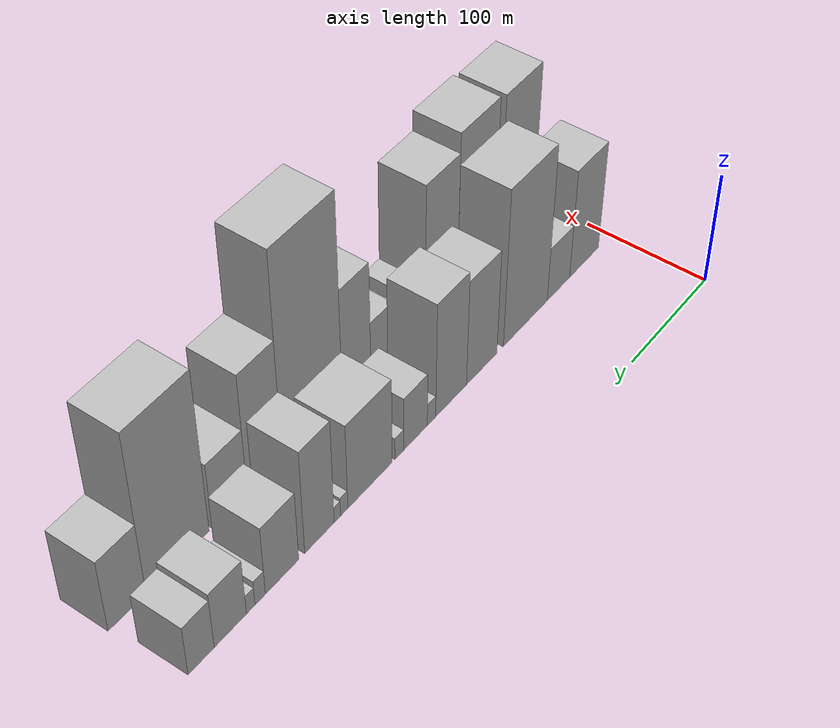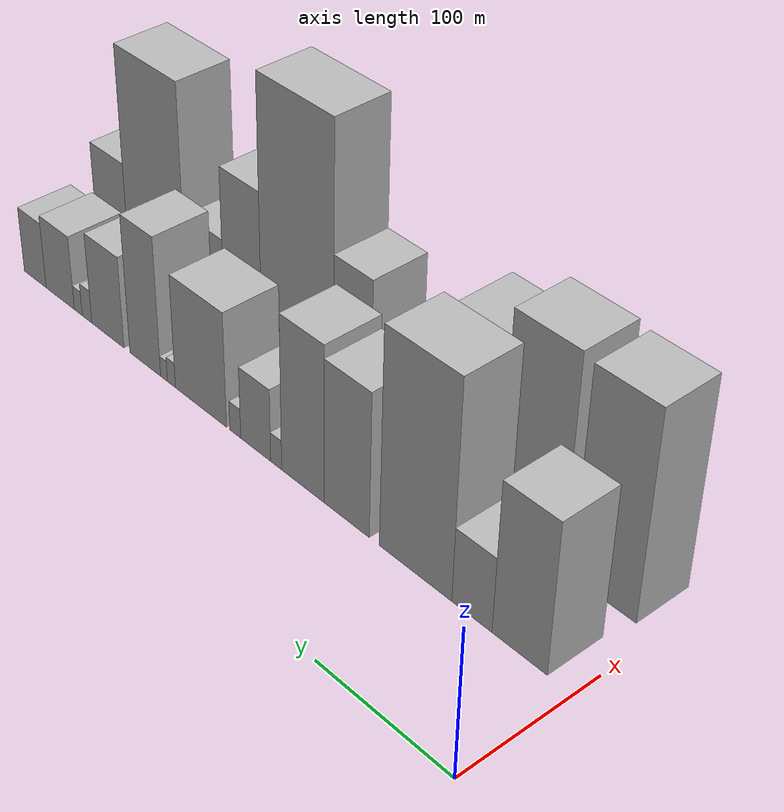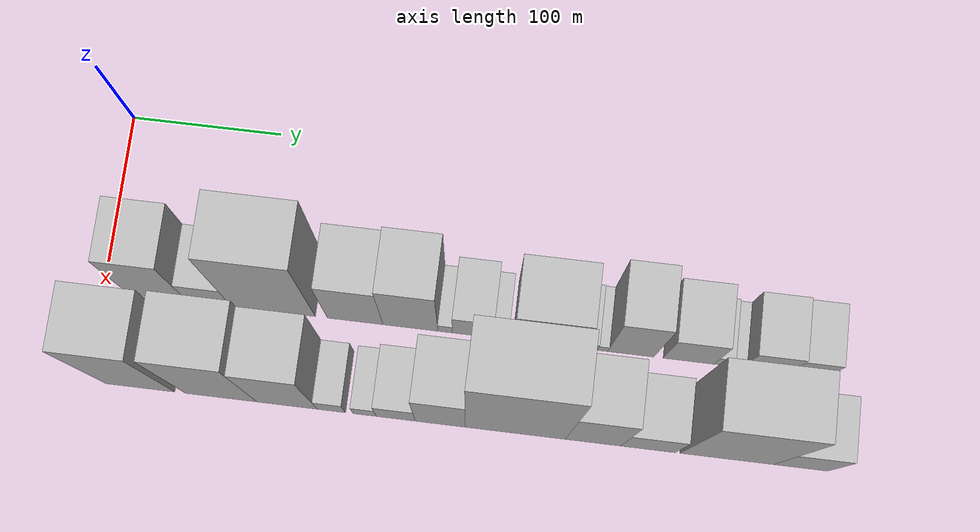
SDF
<sdf version="1.6">
 <world name="default">
  <model name="building_16">
   <static>1</static>
   <pose>100.0000 36.6464 0 0.000000 0.000000 0.000000</pose>
   <link name="link">
    <pose>0 0 51.00 0 0 0</pose>
    <collision name="collision"><geometry><box><size>40.0000 38.8180 102.0000</size></box></geometry></collision>
    <visual name="visual">
     <cast_shadows>0</cast_shadows>
     <geometry><box><size>40.0000 38.8180 102.0000</size></box></geometry>
     <material>
      <script>
       <uri>model://HANNAS_wall/materials/scripts</uri>
       <uri>model://HANNAS_wall/materials/textures</uri>
       <name>vrc/HANNAS_wall</name>
      </script>
     </material>
    </visual>
   </link>
  </model>
  <model name="building_17">
   <static>1</static>
   <pose>100.0000 70.6709 0 0.000000 0.000000 0.000000</pose>
   <link name="link">
    <pose>0 0 25.50 0 0 0</pose>
    <collision name="collision"><geometry><box><size>40.0000 29.2312 51.0000</size></box></geometry></collision>
    <visual name="visual">
     <cast_shadows>0</cast_shadows>
     <geometry><box><size>40.0000 29.2312 51.0000</size></box></geometry>
     <material>
      <script>
       <uri>model://HANNAS_wall/materials/scripts</uri>
       <uri>model://HANNAS_wall/materials/textures</uri>
       <name>vrc/HANNAS_wall</name>
      </script>
     </material>
    </visual>
   </link>
  </model>
  <model name="building_18">
   <static>1</static>
   <pose>100.0000 113.0090 0 0.000000 0.000000 0.000000</pose>
   <link name="link">
    <pose>0 0 73.50 0 0 0</pose>
    <collision name="collision"><geometry><box><size>40.0000 55.4450 147.0000</size></box></geometry></collision>
    <visual name="visual">
     <cast_shadows>0</cast_shadows>
     <geometry><box><size>40.0000 55.4450 147.0000</size></box></geometry>
     <material>
      <script>
       <uri>model://HANNAS_wall/materials/scripts</uri>
       <uri>model://HANNAS_wall/materials/textures</uri>
       <name>vrc/HANNAS_wall</name>
      </script>
     </material>
    </visual>
   </link>
  </model>
  <model name="building_19">
   <static>1</static>
   <pose>100.0000 167.0917 0 0.000000 0.000000 0.000000</pose>
   <link name="link">
    <pose>0 0 49.50 0 0 0</pose>
    <collision name="collision"><geometry><box><size>40.0000 36.7203 99.0000</size></box></geometry></collision>
    <visual name="visual">
     <cast_shadows>0</cast_shadows>
     <geometry><box><size>40.0000 36.7203 99.0000</size></box></geometry>
     <material>
      <script>
       <uri>model://HANNAS_wall/materials/scripts</uri>
       <uri>model://HANNAS_wall/materials/textures</uri>
       <name>vrc/HANNAS_wall</name>
      </script>
     </material>
    </visual>
   </link>
  </model>
  <model name="building_20">
   <static>1</static>
   <pose>100.0000 203.5088 0 0.000000 0.000000 0.000000</pose>
   <link name="link">
    <pose>0 0 54.00 0 0 0</pose>
    <collision name="collision"><geometry><box><size>40.0000 36.1139 108.0000</size></box></geometry></collision>
    <visual name="visual">
     <cast_shadows>0</cast_shadows>
     <geometry><box><size>40.0000 36.1139 108.0000</size></box></geometry>
     <material>
      <script>
       <uri>model://HANNAS_wall/materials/scripts</uri>
       <uri>model://HANNAS_wall/materials/textures</uri>
       <name>vrc/HANNAS_wall</name>
      </script>
     </material>
    </visual>
   </link>
  </model>
  <model name="building_21">
   <static>1</static>
   <pose>100.0000 226.3433 0 0.000000 0.000000 0.000000</pose>
   <link name="link">
    <pose>0 0 10.50 0 0 0</pose>
    <collision name="collision"><geometry><box><size>40.0000 9.5550 21.0000</size></box></geometry></collision>
    <visual name="visual">
     <cast_shadows>0</cast_shadows>
     <geometry><box><size>40.0000 9.5550 21.0000</size></box></geometry>
     <material>
      <script>
       <uri>model://HANNAS_wall/materials/scripts</uri>
       <uri>model://HANNAS_wall/materials/textures</uri>
       <name>vrc/HANNAS_wall</name>
      </script>
     </material>
    </visual>
   </link>
  </model>
  <model name="building_22">
   <static>1</static>
   <pose>100.0000 244.4380 0 0.000000 0.000000 0.000000</pose>
   <link name="link">
    <pose>0 0 25.50 0 0 0</pose>
    <collision name="collision"><geometry><box><size>40.0000 26.6344 51.0000</size></box></geometry></collision>
    <visual name="visual">
     <cast_shadows>0</cast_shadows>
     <geometry><box><size>40.0000 26.6344 51.0000</size></box></geometry>
     <material>
      <script>
       <uri>model://HANNAS_wall/materials/scripts</uri>
       <uri>model://HANNAS_wall/materials/textures</uri>
       <name>vrc/HANNAS_wall</name>
      </script>
     </material>
    </visual>
   </link>
  </model>
  <model name="building_23">
   <static>1</static>
   <pose>100.0000 262.6587 0 0.000000 0.000000 0.000000</pose>
   <link name="link">
    <pose>0 0 10.50 0 0 0</pose>
    <collision name="collision"><geometry><box><size>40.0000 9.8070 21.0000</size></box></geometry></collision>
    <visual name="visual">
     <cast_shadows>0</cast_shadows>
     <geometry><box><size>40.0000 9.8070 21.0000</size></box></geometry>
     <material>
      <script>
       <uri>model://HANNAS_wall/materials/scripts</uri>
       <uri>model://HANNAS_wall/materials/textures</uri>
       <name>vrc/HANNAS_wall</name>
      </script>
     </material>
    </visual>
   </link>
  </model>
  <model name="building_24">
   <static>1</static>
   <pose>100.0000 294.5221 0 0.000000 0.000000 0.000000</pose>
   <link name="link">
    <pose>0 0 40.50 0 0 0</pose>
    <collision name="collision"><geometry><box><size>40.0000 47.9198 81.0000</size></box></geometry></collision>
    <visual name="visual">
     <cast_shadows>0</cast_shadows>
     <geometry><box><size>40.0000 47.9198 81.0000</size></box></geometry>
     <material>
      <script>
       <uri>model://HANNAS_wall/materials/scripts</uri>
       <uri>model://HANNAS_wall/materials/textures</uri>
       <name>vrc/HANNAS_wall</name>
      </script>
     </material>
    </visual>
   </link>
  </model>
  <model name="building_25">
   <static>1</static>
   <pose>100.0000 322.3379 0 0.000000 0.000000 0.000000</pose>
   <link name="link">
    <pose>0 0 9.00 0 0 0</pose>
    <collision name="collision"><geometry><box><size>40.0000 7.7118 18.0000</size></box></geometry></collision>
    <visual name="visual">
     <cast_shadows>0</cast_shadows>
     <geometry><box><size>40.0000 7.7118 18.0000</size></box></geometry>
     <material>
      <script>
       <uri>model://HANNAS_wall/materials/scripts</uri>
       <uri>model://HANNAS_wall/materials/textures</uri>
       <name>vrc/HANNAS_wall</name>
      </script>
     </material>
    </visual>
   </link>
  </model>
  <model name="building_26">
   <static>1</static>
   <pose>100.0000 329.4897 0 0.000000 0.000000 0.000000</pose>
   <link name="link">
    <pose>0 0 7.50 0 0 0</pose>
    <collision name="collision"><geometry><box><size>40.0000 6.5919 15.0000</size></box></geometry></collision>
    <visual name="visual">
     <cast_shadows>0</cast_shadows>
     <geometry><box><size>40.0000 6.5919 15.0000</size></box></geometry>
     <material>
      <script>
       <uri>model://HANNAS_wall/materials/scripts</uri>
       <uri>model://HANNAS_wall/materials/textures</uri>
       <name>vrc/HANNAS_wall</name>
      </script>
     </material>
    </visual>
   </link>
  </model>
  <model name="building_27">
   <static>1</static>
   <pose>100.0000 347.9897 0 0.000000 0.000000 0.000000</pose>
   <link name="link">
    <pose>0 0 49.50 0 0 0</pose>
    <collision name="collision"><geometry><box><size>40.0000 30.4081 99.0000</size></box></geometry></collision>
    <visual name="visual">
     <cast_shadows>0</cast_shadows>
     <geometry><box><size>40.0000 30.4081 99.0000</size></box></geometry>
     <material>
      <script>
       <uri>model://HANNAS_wall/materials/scripts</uri>
       <uri>model://HANNAS_wall/materials/textures</uri>
       <name>vrc/HANNAS_wall</name>
      </script>
     </material>
    </visual>
   </link>
  </model>
  <model name="building_28">
   <static>1</static>
   <pose>100.0000 385.7525 0 0.000000 0.000000 0.000000</pose>
   <link name="link">
    <pose>0 0 33.00 0 0 0</pose>
    <collision name="collision"><geometry><box><size>40.0000 33.1177 66.0000</size></box></geometry></collision>
    <visual name="visual">
     <cast_shadows>0</cast_shadows>
     <geometry><box><size>40.0000 33.1177 66.0000</size></box></geometry>
     <material>
      <script>
       <uri>model://HANNAS_wall/materials/scripts</uri>
       <uri>model://HANNAS_wall/materials/textures</uri>
       <name>vrc/HANNAS_wall</name>
      </script>
     </material>
    </visual>
   </link>
  </model>
  <model name="building_29">
   <static>1</static>
   <pose>100.0000 407.3562 0 0.000000 0.000000 0.000000</pose>
   <link name="link">
    <pose>0 0 12.00 0 0 0</pose>
    <collision name="collision"><geometry><box><size>40.0000 10.0896 24.0000</size></box></geometry></collision>
    <visual name="visual">
     <cast_shadows>0</cast_shadows>
     <geometry><box><size>40.0000 10.0896 24.0000</size></box></geometry>
     <material>
      <script>
       <uri>model://HANNAS_wall/materials/scripts</uri>
       <uri>model://HANNAS_wall/materials/textures</uri>
       <name>vrc/HANNAS_wall</name>
      </script>
     </material>
    </visual>
   </link>
  </model>
  <model name="building_30">
   <static>1</static>
   <pose>100.0000 416.5464 0 0.000000 0.000000 0.000000</pose>
   <link name="link">
    <pose>0 0 9.00 0 0 0</pose>
    <collision name="collision"><geometry><box><size>40.0000 8.2909 18.0000</size></box></geometry></collision>
    <visual name="visual">
     <cast_shadows>0</cast_shadows>
     <geometry><box><size>40.0000 8.2909 18.0000</size></box></geometry>
     <material>
      <script>
       <uri>model://HANNAS_wall/materials/scripts</uri>
       <uri>model://HANNAS_wall/materials/textures</uri>
       <name>vrc/HANNAS_wall</name>
      </script>
     </material>
    </visual>
   </link>
  </model>
  <model name="building_31">
   <static>1</static>
   <pose>100.0000 435.9481 0 0.000000 0.000000 0.000000</pose>
   <link name="link">
    <pose>0 0 27.00 0 0 0</pose>
    <collision name="collision"><geometry><box><size>40.0000 30.5125 54.0000</size></box></geometry></collision>
    <visual name="visual">
     <cast_shadows>0</cast_shadows>
     <geometry><box><size>40.0000 30.5125 54.0000</size></box></geometry>
     <material>
      <script>
       <uri>model://HANNAS_wall/materials/scripts</uri>
       <uri>model://HANNAS_wall/materials/textures</uri>
       <name>vrc/HANNAS_wall</name>
      </script>
     </material>
    </visual>
   </link>
  </model>
  <model name="building_32">
   <static>1</static>
   <pose>100.0000 463.2754 0 0.000000 0.000000 0.000000</pose>
   <link name="link">
    <pose>0 0 24.00 0 0 0</pose>
    <collision name="collision"><geometry><box><size>40.0000 24.1422 48.0000</size></box></geometry></collision>
    <visual name="visual">
     <cast_shadows>0</cast_shadows>
     <geometry><box><size>40.0000 24.1422 48.0000</size></box></geometry>
     <material>
      <script>
       <uri>model://HANNAS_wall/materials/scripts</uri>
       <uri>model://HANNAS_wall/materials/textures</uri>
       <name>vrc/HANNAS_wall</name>
      </script>
     </material>
    </visual>
   </link>
  </model>
  <model name="building_44">
   <static>1</static>
   <pose>160.0000 35.0524 0 0.000000 0.000000 0.000000</pose>
   <link name="link">
    <pose>0 0 70.50 0 0 0</pose>
    <collision name="collision"><geometry><box><size>40.0000 44.7973 141.0000</size></box></geometry></collision>
    <visual name="visual">
     <cast_shadows>0</cast_shadows>
     <geometry><box><size>40.0000 44.7973 141.0000</size></box></geometry>
     <material>
      <script>
       <uri>model://HANNAS_wall/materials/scripts</uri>
       <uri>model://HANNAS_wall/materials/textures</uri>
       <name>vrc/HANNAS_wall</name>
      </script>
     </material>
    </visual>
   </link>
  </model>
  <model name="building_45">
   <static>1</static>
   <pose>160.0000 87.8977 0 0.000000 0.000000 0.000000</pose>
   <link name="link">
    <pose>0 0 72.00 0 0 0</pose>
    <collision name="collision"><geometry><box><size>40.0000 46.8934 144.0000</size></box></geometry></collision>
    <visual name="visual">
     <cast_shadows>0</cast_shadows>
     <geometry><box><size>40.0000 46.8934 144.0000</size></box></geometry>
     <material>
      <script>
       <uri>model://HANNAS_wall/materials/scripts</uri>
       <uri>model://HANNAS_wall/materials/textures</uri>
       <name>vrc/HANNAS_wall</name>
      </script>
     </material>
    </visual>
   </link>
  </model>
  <model name="building_46">
   <static>1</static>
   <pose>160.0000 131.0804 0 0.000000 0.000000 0.000000</pose>
   <link name="link">
    <pose>0 0 63.00 0 0 0</pose>
    <collision name="collision"><geometry><box><size>40.0000 39.4721 126.0000</size></box></geometry></collision>
    <visual name="visual">
     <cast_shadows>0</cast_shadows>
     <geometry><box><size>40.0000 39.4721 126.0000</size></box></geometry>
     <material>
      <script>
       <uri>model://HANNAS_wall/materials/scripts</uri>
       <uri>model://HANNAS_wall/materials/textures</uri>
       <name>vrc/HANNAS_wall</name>
      </script>
     </material>
    </visual>
   </link>
  </model>
  <model name="building_47">
   <static>1</static>
   <pose>160.0000 159.9213 0 0.000000 0.000000 0.000000</pose>
   <link name="link">
    <pose>0 0 18.00 0 0 0</pose>
    <collision name="collision"><geometry><box><size>40.0000 18.2095 36.0000</size></box></geometry></collision>
    <visual name="visual">
     <cast_shadows>0</cast_shadows>
     <geometry><box><size>40.0000 18.2095 36.0000</size></box></geometry>
     <material>
      <script>
       <uri>model://HANNAS_wall/materials/scripts</uri>
       <uri>model://HANNAS_wall/materials/textures</uri>
       <name>vrc/HANNAS_wall</name>
      </script>
     </material>
    </visual>
   </link>
  </model>
  <model name="building_48">
   <static>1</static>
   <pose>160.0000 181.5531 0 0.000000 0.000000 0.000000</pose>
   <link name="link">
    <pose>0 0 15.00 0 0 0</pose>
    <collision name="collision"><geometry><box><size>40.0000 15.0543 30.0000</size></box></geometry></collision>
    <visual name="visual">
     <cast_shadows>0</cast_shadows>
     <geometry><box><size>40.0000 15.0543 30.0000</size></box></geometry>
     <material>
      <script>
       <uri>model://HANNAS_wall/materials/scripts</uri>
       <uri>model://HANNAS_wall/materials/textures</uri>
       <name>vrc/HANNAS_wall</name>
      </script>
     </material>
    </visual>
   </link>
  </model>
  <model name="building_49">
   <static>1</static>
   <pose>160.0000 201.7491 0 0.000000 0.000000 0.000000</pose>
   <link name="link">
    <pose>0 0 24.00 0 0 0</pose>
    <collision name="collision"><geometry><box><size>40.0000 25.3377 48.0000</size></box></geometry></collision>
    <visual name="visual">
     <cast_shadows>0</cast_shadows>
     <geometry><box><size>40.0000 25.3377 48.0000</size></box></geometry>
     <material>
      <script>
       <uri>model://HANNAS_wall/materials/scripts</uri>
       <uri>model://HANNAS_wall/materials/textures</uri>
       <name>vrc/HANNAS_wall</name>
      </script>
     </material>
    </visual>
   </link>
  </model>
  <model name="building_50">
   <static>1</static>
   <pose>160.0000 230.4884 0 0.000000 0.000000 0.000000</pose>
   <link name="link">
    <pose>0 0 52.50 0 0 0</pose>
    <collision name="collision"><geometry><box><size>40.0000 32.1409 105.0000</size></box></geometry></collision>
    <visual name="visual">
     <cast_shadows>0</cast_shadows>
     <geometry><box><size>40.0000 32.1409 105.0000</size></box></geometry>
     <material>
      <script>
       <uri>model://HANNAS_wall/materials/scripts</uri>
       <uri>model://HANNAS_wall/materials/textures</uri>
       <name>vrc/HANNAS_wall</name>
      </script>
     </material>
    </visual>
   </link>
  </model>
  <model name="building_51">
   <static>1</static>
   <pose>160.0000 279.0515 0 0.000000 0.000000 0.000000</pose>
   <link name="link">
    <pose>0 0 96.00 0 0 0</pose>
    <collision name="collision"><geometry><box><size>40.0000 64.9853 192.0000</size></box></geometry></collision>
    <visual name="visual">
     <cast_shadows>0</cast_shadows>
     <geometry><box><size>40.0000 64.9853 192.0000</size></box></geometry>
     <material>
      <script>
       <uri>model://HANNAS_wall/materials/scripts</uri>
       <uri>model://HANNAS_wall/materials/textures</uri>
       <name>vrc/HANNAS_wall</name>
      </script>
     </material>
    </visual>
   </link>
  </model>
  <model name="building_52">
   <static>1</static>
   <pose>160.0000 329.4946 0 0.000000 0.000000 0.000000</pose>
   <link name="link">
    <pose>0 0 57.00 0 0 0</pose>
    <collision name="collision"><geometry><box><size>40.0000 35.9009 114.0000</size></box></geometry></collision>
    <visual name="visual">
     <cast_shadows>0</cast_shadows>
     <geometry><box><size>40.0000 35.9009 114.0000</size></box></geometry>
     <material>
      <script>
       <uri>model://HANNAS_wall/materials/scripts</uri>
       <uri>model://HANNAS_wall/materials/textures</uri>
       <name>vrc/HANNAS_wall</name>
      </script>
     </material>
    </visual>
   </link>
  </model>
  <model name="building_53">
   <static>1</static>
   <pose>160.0000 364.9697 0 0.000000 0.000000 0.000000</pose>
   <link name="link">
    <pose>0 0 31.50 0 0 0</pose>
    <collision name="collision"><geometry><box><size>40.0000 35.0493 63.0000</size></box></geometry></collision>
    <visual name="visual">
     <cast_shadows>0</cast_shadows>
     <geometry><box><size>40.0000 35.0493 63.0000</size></box></geometry>
     <material>
      <script>
       <uri>model://HANNAS_wall/materials/scripts</uri>
       <uri>model://HANNAS_wall/materials/textures</uri>
       <name>vrc/HANNAS_wall</name>
      </script>
     </material>
    </visual>
   </link>
  </model>
  <model name="building_54">
   <static>1</static>
   <pose>160.0000 415.6444 0 0.000000 0.000000 0.000000</pose>
   <link name="link">
    <pose>0 0 76.50 0 0 0</pose>
    <collision name="collision"><geometry><box><size>40.0000 60.3001 153.0000</size></box></geometry></collision>
    <visual name="visual">
     <cast_shadows>0</cast_shadows>
     <geometry><box><size>40.0000 60.3001 153.0000</size></box></geometry>
     <material>
      <script>
       <uri>model://HANNAS_wall/materials/scripts</uri>
       <uri>model://HANNAS_wall/materials/textures</uri>
       <name>vrc/HANNAS_wall</name>
      </script>
     </material>
    </visual>
   </link>
  </model>
  <model name="building_55">
   <static>1</static>
   <pose>160.0000 463.0755 0 0.000000 0.000000 0.000000</pose>
   <link name="link">
    <pose>0 0 34.50 0 0 0</pose>
    <collision name="collision"><geometry><box><size>40.0000 34.5620 69.0000</size></box></geometry></collision>
    <visual name="visual">
     <cast_shadows>0</cast_shadows>
     <geometry><box><size>40.0000 34.5620 69.0000</size></box></geometry>
     <material>
      <script>
       <uri>model://HANNAS_wall/materials/scripts</uri>
       <uri>model://HANNAS_wall/materials/textures</uri>
       <name>vrc/HANNAS_wall</name>
      </script>
     </material>
    </visual>
   </link>
  </model>
 </world>
</sdf>
